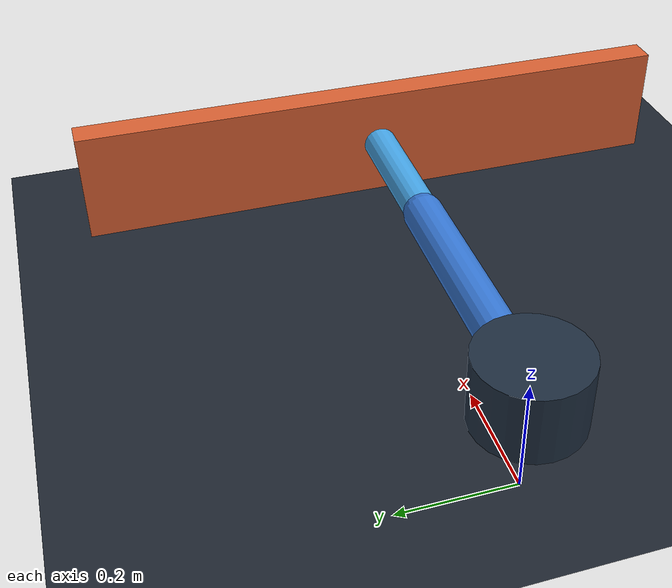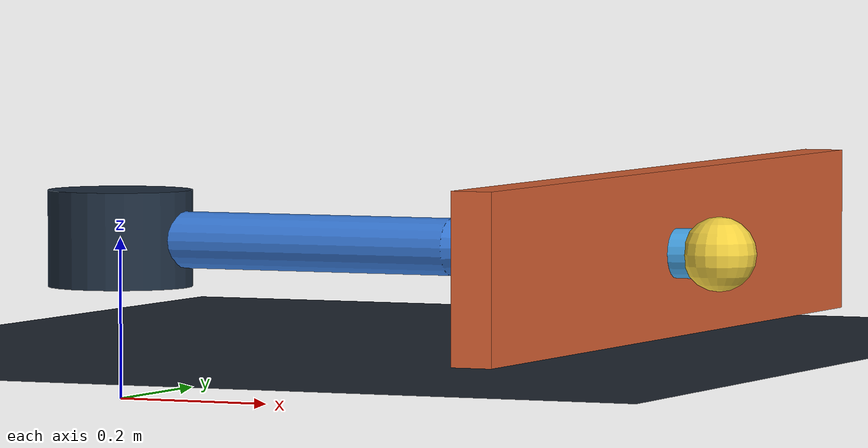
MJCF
<mujoco model="planar compliant arm">
  <compiler angle="radian" autolimits="true"/>
  <option timestep="0.002" gravity="0 0 0" integrator="implicitfast" cone="elliptic"/>

  <default>
    <joint armature="0.04" damping="0.7" limited="true"/>
    <geom density="650" friction="0.9 0.08 0.01" rgba="0.22 0.48 0.85 1"/>
    <motor ctrllimited="true" ctrlrange="-40 40"/>
  </default>

  <visual>
    <headlight ambient="0.35 0.35 0.35" diffuse="0.7 0.7 0.7" specular="0.2 0.2 0.2"/>
    <rgba haze="0.15 0.25 0.35 1"/>
    <global azimuth="90" elevation="-90"/>
  </visual>

  <worldbody>
    <light pos="0 0 2" dir="0 0 -1"/>
    <geom name="floor" type="plane" pos="0 0 0.08" size="1.2 1.2 0.05"
          rgba="0.12 0.15 0.19 1" contype="0" conaffinity="0"/>
    <geom name="wall" type="box" pos="0.72 0 0.20" size="0.025 0.55 0.10"
          rgba="0.85 0.38 0.20 1" solref="0.008 1" solimp="0.95 0.99 0.002"/>

    <body name="base" pos="0 0 0.20">
      <geom type="cylinder" size="0.09 0.06" rgba="0.12 0.18 0.25 1"
            contype="0" conaffinity="0"/>
      <body name="link1" pos="0 0 0">
        <joint name="shoulder" type="hinge" axis="0 0 1" range="-2.8 2.8"/>
        <geom type="capsule" fromto="0 0 0 0.45 0 0" size="0.035"
              contype="0" conaffinity="0"/>
        <body name="link2" pos="0.45 0 0">
          <joint name="elbow" type="hinge" axis="0 0 1" range="-2.8 2.8"/>
          <geom type="capsule" fromto="0 0 0 0.35 0 0" size="0.03"
                rgba="0.28 0.66 0.92 1" contype="0" conaffinity="0"/>
          <body name="end_effector" pos="0.35 0 0">
            <geom name="fingertip" type="sphere" size="0.045"
                  rgba="0.95 0.82 0.25 1" friction="0.45 0.05 0.005"/>
            <site name="ee_site" size="0.012" rgba="0.2 1 0.3 1"/>
          </body>
        </body>
      </body>
    </body>
  </worldbody>

  <actuator>
    <motor name="shoulder_motor" joint="shoulder"/>
    <motor name="elbow_motor" joint="elbow"/>
  </actuator>
</mujoco>
